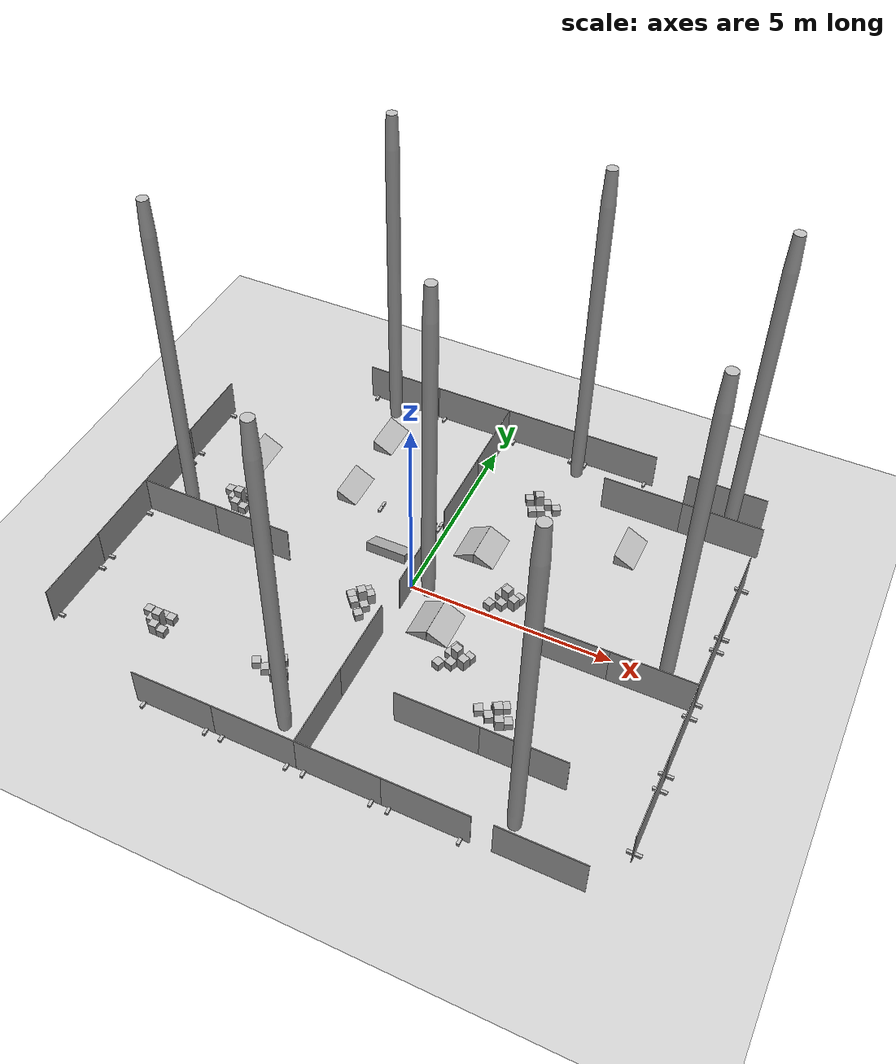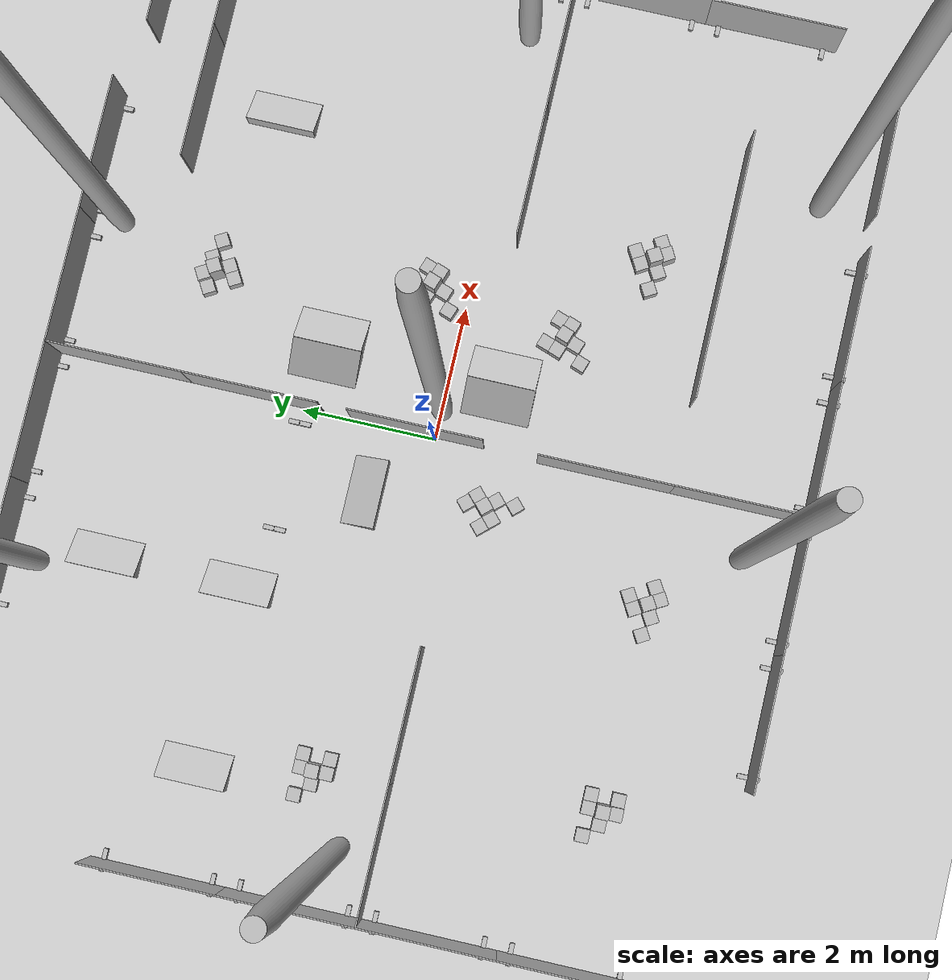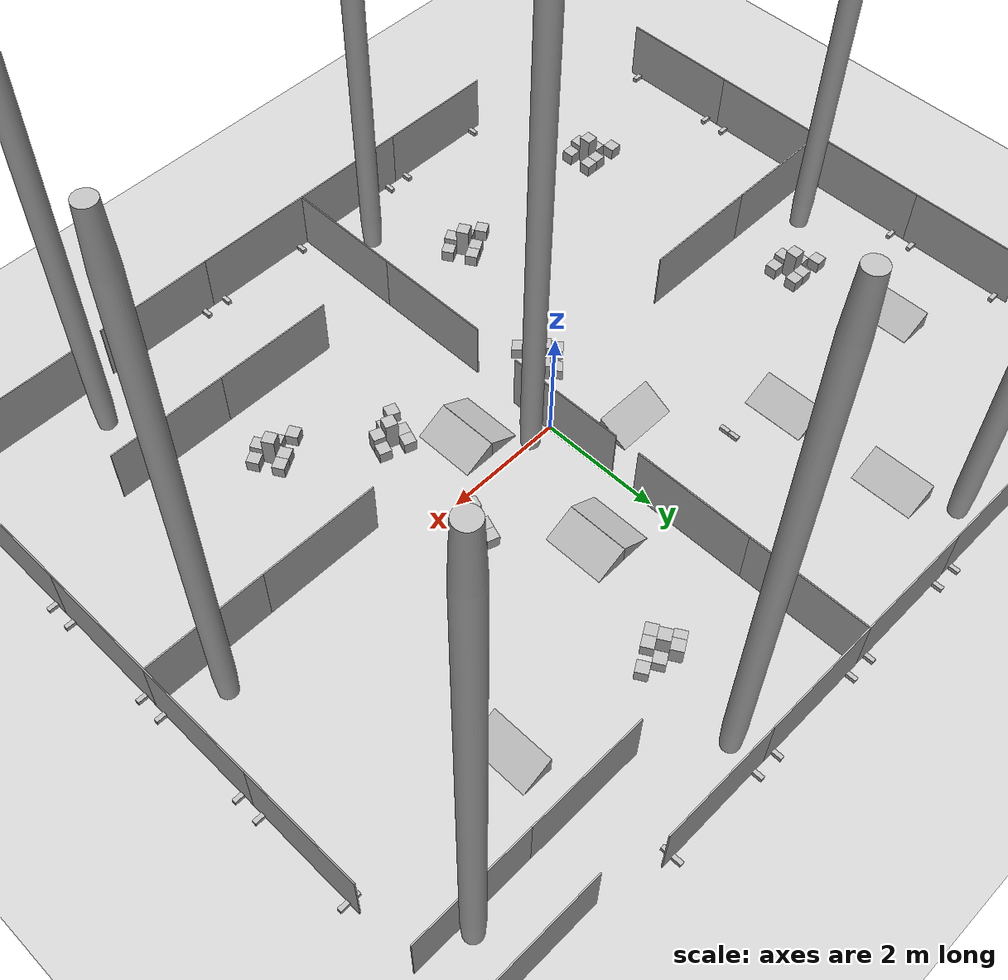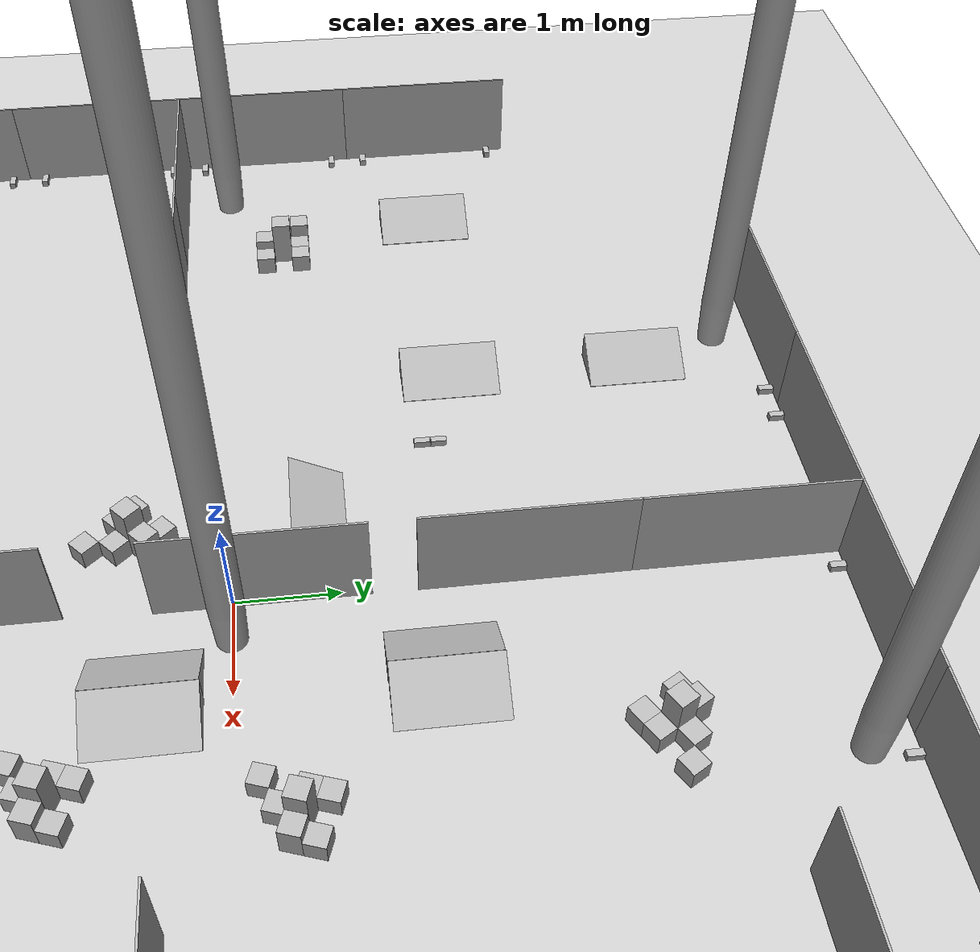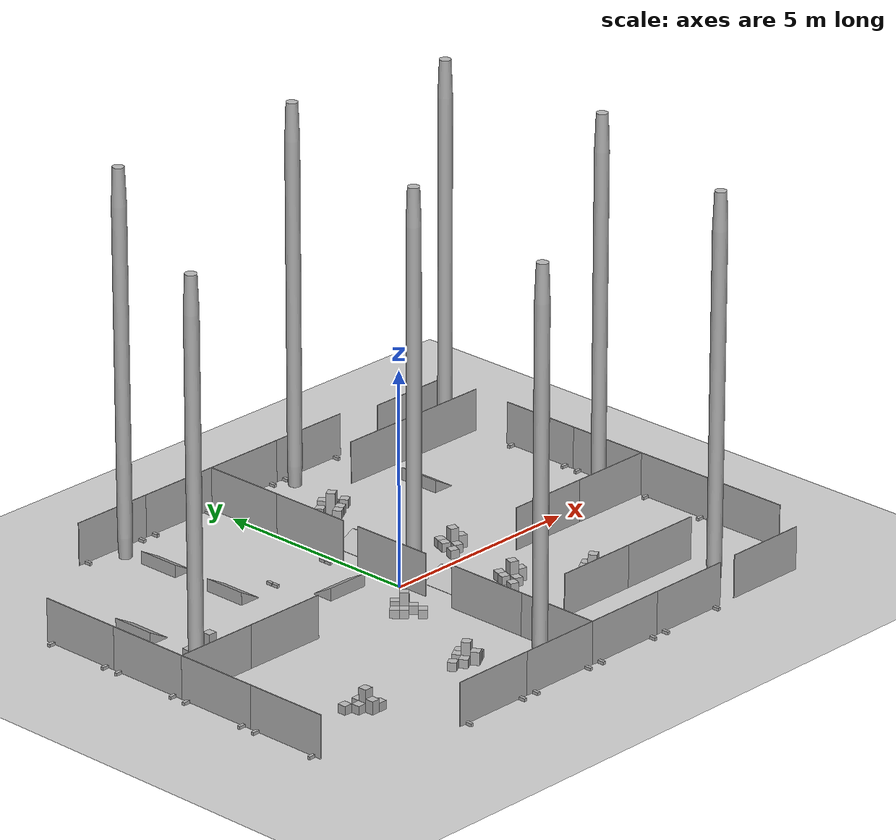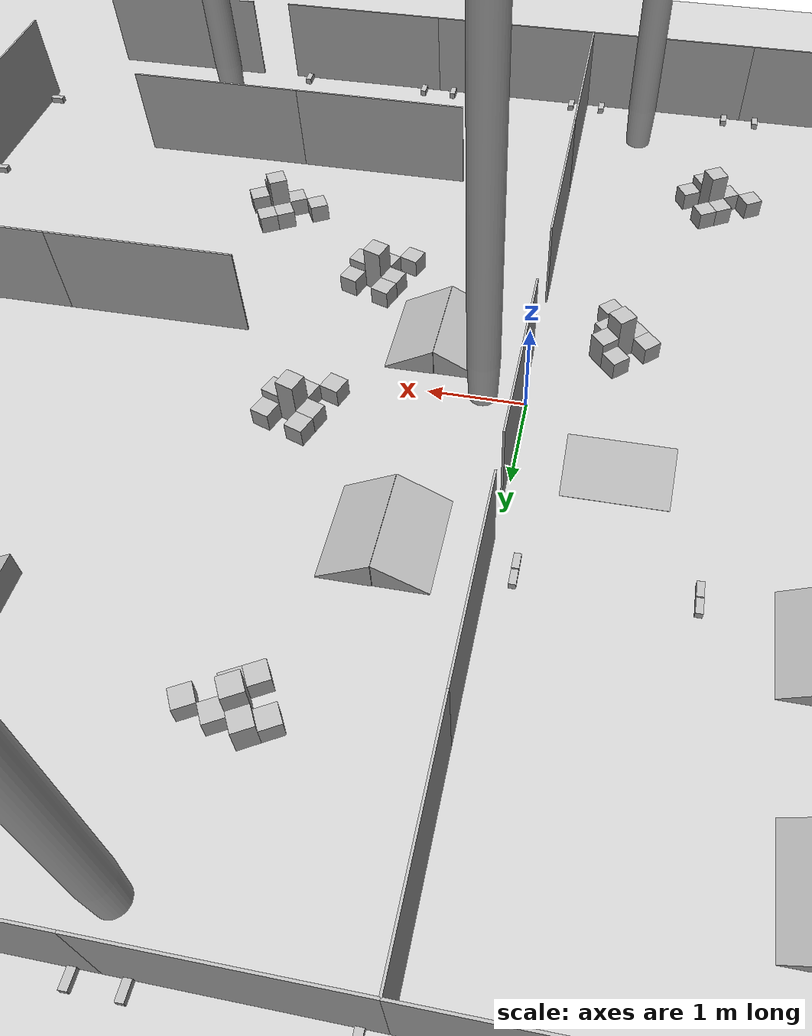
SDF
<sdf version="1.4">
 <world name="arena_HKT_2">
  <include><uri>model://ground_plane</uri></include>
  <include>
   <name>wall_2x1.083</name>
   <pose>-7.0 2.468942403793335 0.5130000114440918  0.0 -0.0 1.570796251296997</pose>
   <uri>model://wall_2x1</uri>
  </include>
  <include>
   <name>wall_2x1.084</name>
   <pose>-4.0 -0.531057596206665 0.5130000114440918  0.0 0.0 0.0</pose>
   <uri>model://wall_2x1</uri>
  </include>
  <include>
   <name>wall_stand.169</name>
   <pose>-1.8005000352859497 2.0 0.03449999913573265  0.0 -0.0 1.570796251296997</pose>
   <uri>model://wall_stand</uri>
  </include>
  <include>
   <name>wall_stand.170</name>
   <pose>-0.19949999451637268 2.0 0.03449999913573265  0.0 -0.0 1.570796251296997</pose>
   <uri>model://wall_stand</uri>
  </include>
  <include>
   <name>wall_2x1.085</name>
   <pose>-7.0 0.46894240379333496 0.5130000114440918  0.0 -0.0 1.570796251296997</pose>
   <uri>model://wall_2x1</uri>
  </include>
  <include>
   <name>wall_2x1.086</name>
   <pose>-7.0 -3.531057596206665 0.5130000114440918  0.0 -0.0 1.570796251296997</pose>
   <uri>model://wall_2x1</uri>
  </include>
  <include>
   <name>wall_2x1.087</name>
   <pose>-7.0 -1.531057596206665 0.5130000114440918  0.0 -0.0 1.570796251296997</pose>
   <uri>model://wall_2x1</uri>
  </include>
  <include>
   <name>wall_2x1.088</name>
   <pose>-6.0 -0.531057596206665 0.5130000114440918  0.0 0.0 0.0</pose>
   <uri>model://wall_2x1</uri>
  </include>
  <include>
   <name>wall_stand.177</name>
   <pose>-0.19949999451637268 2.0 0.03449999913573265  0.0 -0.0 1.570796251296997</pose>
   <uri>model://wall_stand</uri>
  </include>
  <include>
   <name>wall_stand.167</name>
   <pose>-7.0 3.269442558288574 0.03449999913573265  0.0 0.0 0.0</pose>
   <uri>model://wall_stand</uri>
  </include>
  <include>
   <name>wall_stand.168</name>
   <pose>-7.0 1.6684424877166748 0.03449999913573265  0.0 0.0 0.0</pose>
   <uri>model://wall_stand</uri>
  </include>
  <include>
   <name>wall_stand.171</name>
   <pose>-7.0 1.2694425582885742 0.03449999913573265  0.0 0.0 0.0</pose>
   <uri>model://wall_stand</uri>
  </include>
  <include>
   <name>wall_stand.172</name>
   <pose>-7.0 -0.3315575122833252 0.03449999913573265  0.0 0.0 0.0</pose>
   <uri>model://wall_stand</uri>
  </include>
  <include>
   <name>wall_stand.173</name>
   <pose>-7.0 -4.331557273864746 0.03449999913573265  0.0 0.0 0.0</pose>
   <uri>model://wall_stand</uri>
  </include>
  <include>
   <name>wall_stand.174</name>
   <pose>-7.0 -2.730557680130005 0.03449999913573265  0.0 0.0 0.0</pose>
   <uri>model://wall_stand</uri>
  </include>
  <include>
   <name>wall_stand.175</name>
   <pose>-7.0 -0.7305574417114258 0.03449999913573265  0.0 0.0 0.0</pose>
   <uri>model://wall_stand</uri>
  </include>
  <include>
   <name>wall_stand.176</name>
   <pose>-7.0 -2.331557512283325 0.03449999913573265  0.0 0.0 0.0</pose>
   <uri>model://wall_stand</uri>
  </include>
  <include>
   <name>cube_20x20.010</name>
   <pose>-5.073810577392578 0.8086726665496826 0.10000000149011612  0.0 -0.0 3.141592502593994</pose>
   <uri>model://cube_20x20</uri>
  </include>
  <include>
   <name>cube_20x20.011</name>
   <pose>-5.273810386657715 0.6086728572845459 0.10000000149011612  0.0 -0.0 3.141592502593994</pose>
   <uri>model://cube_20x20</uri>
  </include>
  <include>
   <name>cube_20x20.012</name>
   <pose>-5.473810195922852 0.8086726665496826 0.10000000149011612  0.0 -0.0 3.141592502593994</pose>
   <uri>model://cube_20x20</uri>
  </include>
  <include>
   <name>cube_20x20.013</name>
   <pose>-4.873810291290283 0.8086726665496826 0.10000000149011612  0.0 -0.0 3.141592502593994</pose>
   <uri>model://cube_20x20</uri>
  </include>
  <include>
   <name>cube_20x20.014</name>
   <pose>-4.873810291290283 0.4086730480194092 0.10000000149011612  0.0 -0.0 3.141592502593994</pose>
   <uri>model://cube_20x20</uri>
  </include>
  <include>
   <name>cube_20x30.002</name>
   <pose>-5.073810577392578 0.4086730480194092 0.15000000596046448  0.0 -0.0 3.141592502593994</pose>
   <uri>model://cube_20x30</uri>
  </include>
  <include>
   <name>cube_20x50.002</name>
   <pose>-5.073810577392578 0.6086728572845459 0.25  0.0 -0.0 3.141592502593994</pose>
   <uri>model://cube_20x50</uri>
  </include>
  <include>
   <name>cube_20x20.015</name>
   <pose>-5.073810577392578 0.8086726665496826 0.10000000149011612  0.0 -0.0 3.141592502593994</pose>
   <uri>model://cube_20x20</uri>
  </include>
  <include>
   <name>cube_20x20.016</name>
   <pose>-5.273810386657715 0.6086728572845459 0.10000000149011612  0.0 -0.0 3.141592502593994</pose>
   <uri>model://cube_20x20</uri>
  </include>
  <include>
   <name>cube_20x20.017</name>
   <pose>-5.473810195922852 0.8086726665496826 0.10000000149011612  0.0 -0.0 3.141592502593994</pose>
   <uri>model://cube_20x20</uri>
  </include>
  <include>
   <name>cube_20x20.018</name>
   <pose>-4.873810291290283 0.8086726665496826 0.10000000149011612  0.0 -0.0 3.141592502593994</pose>
   <uri>model://cube_20x20</uri>
  </include>
  <include>
   <name>cube_20x20.019</name>
   <pose>-4.873810291290283 0.4086730480194092 0.10000000149011612  0.0 -0.0 3.141592502593994</pose>
   <uri>model://cube_20x20</uri>
  </include>
  <include>
   <name>cube_20x30.003</name>
   <pose>-5.073810577392578 0.4086730480194092 0.15000000596046448  0.0 -0.0 3.141592502593994</pose>
   <uri>model://cube_20x30</uri>
  </include>
  <include>
   <name>cube_20x50.003</name>
   <pose>-5.073810577392578 0.6086728572845459 0.25  0.0 -0.0 3.141592502593994</pose>
   <uri>model://cube_20x50</uri>
  </include>
  <include>
   <name>ramp.008</name>
   <pose>1.2565653324127197 1.8507144451141357 0.15000000596046448  0.0 0.0 0.0</pose>
   <uri>model://ramp</uri>
  </include>
  <include>
   <name>ramp.009</name>
   <pose>0.7436184883117676 1.8457143306732178 0.15000000596046448  0.0 -0.0 3.141592502593994</pose>
   <uri>model://ramp</uri>
  </include>
  <include>
   <name>ramp.010</name>
   <pose>-0.9832800030708313 0.8252742290496826 0.15000000596046448  0.0 -0.0 7.853981971740723</pose>
   <uri>model://ramp</uri>
  </include>
  <include>
   <name>wall_2x1.097</name>
   <pose>7.071430206298828 -3.531057596206665 0.5130000114440918  0.0 -0.0 4.71238899230957</pose>
   <uri>model://wall_2x1</uri>
  </include>
  <include>
   <name>wall_2x1.098</name>
   <pose>4.071430206298828 -0.5310573577880859 0.5130000114440918  0.0 -0.0 3.141592502593994</pose>
   <uri>model://wall_2x1</uri>
  </include>
  <include>
   <name>wall_stand.191</name>
   <pose>-1.8005000352859497 2.0 0.03449999913573265  0.0 -0.0 1.570796251296997</pose>
   <uri>model://wall_stand</uri>
  </include>
  <include>
   <name>wall_stand.192</name>
   <pose>-0.19949999451637268 2.0 0.03449999913573265  0.0 -0.0 1.570796251296997</pose>
   <uri>model://wall_stand</uri>
  </include>
  <include>
   <name>wall_2x1.099</name>
   <pose>7.071430206298828 -1.531057596206665 0.5130000114440918  0.0 -0.0 4.71238899230957</pose>
   <uri>model://wall_2x1</uri>
  </include>
  <include>
   <name>wall_2x1.100</name>
   <pose>7.071430206298828 2.468942403793335 0.5130000114440918  0.0 -0.0 4.71238899230957</pose>
   <uri>model://wall_2x1</uri>
  </include>
  <include>
   <name>wall_2x1.101</name>
   <pose>7.071430206298828 0.46894240379333496 0.5130000114440918  0.0 -0.0 4.71238899230957</pose>
   <uri>model://wall_2x1</uri>
  </include>
  <include>
   <name>wall_2x1.102</name>
   <pose>6.071430206298828 -0.5310574769973755 0.5130000114440918  0.0 -0.0 3.141592502593994</pose>
   <uri>model://wall_2x1</uri>
  </include>
  <include>
   <name>wall_stand.199</name>
   <pose>-0.19949999451637268 2.0 0.03449999913573265  0.0 -0.0 1.570796251296997</pose>
   <uri>model://wall_stand</uri>
  </include>
  <include>
   <name>wall_stand.189</name>
   <pose>7.071430206298828 -4.331557273864746 0.03450000286102295  0.0 -0.0 3.141592502593994</pose>
   <uri>model://wall_stand</uri>
  </include>
  <include>
   <name>wall_stand.190</name>
   <pose>7.071430206298828 -2.730557680130005 0.03450000286102295  0.0 -0.0 3.141592502593994</pose>
   <uri>model://wall_stand</uri>
  </include>
  <include>
   <name>wall_stand.193</name>
   <pose>7.071430206298828 -2.3315577507019043 0.03450000286102295  0.0 -0.0 3.141592502593994</pose>
   <uri>model://wall_stand</uri>
  </include>
  <include>
   <name>wall_stand.194</name>
   <pose>7.071430206298828 -0.7305576801300049 0.03450000286102295  0.0 -0.0 3.141592502593994</pose>
   <uri>model://wall_stand</uri>
  </include>
  <include>
   <name>wall_stand.195</name>
   <pose>7.071430206298828 3.269442319869995 0.03450000286102295  0.0 -0.0 3.141592502593994</pose>
   <uri>model://wall_stand</uri>
  </include>
  <include>
   <name>wall_stand.196</name>
   <pose>7.071430206298828 1.6684424877166748 0.03450000286102295  0.0 -0.0 3.141592502593994</pose>
   <uri>model://wall_stand</uri>
  </include>
  <include>
   <name>wall_stand.197</name>
   <pose>7.071430206298828 -0.3315577507019043 0.03450000286102295  0.0 -0.0 3.141592502593994</pose>
   <uri>model://wall_stand</uri>
  </include>
  <include>
   <name>wall_stand.198</name>
   <pose>7.071430206298828 1.2694423198699951 0.03450000286102295  0.0 -0.0 3.141592502593994</pose>
   <uri>model://wall_stand</uri>
  </include>
  <include>
   <name>wall_2x1.103</name>
   <pose>-2.989354133605957 -5.530285835266113 0.5130000114440918  0.0 -0.0 3.141592502593994</pose>
   <uri>model://wall_2x1</uri>
  </include>
  <include>
   <name>wall_2x1.104</name>
   <pose>0.010646045207977295 -2.5302858352661133 0.5130000114440918  0.0 -0.0 1.570796251296997</pose>
   <uri>model://wall_2x1</uri>
  </include>
  <include>
   <name>wall_stand.202</name>
   <pose>-1.8005000352859497 2.0 0.03449999913573265  0.0 -0.0 1.570796251296997</pose>
   <uri>model://wall_stand</uri>
  </include>
  <include>
   <name>wall_stand.203</name>
   <pose>-0.19949999451637268 2.0 0.03449999913573265  0.0 -0.0 1.570796251296997</pose>
   <uri>model://wall_stand</uri>
  </include>
  <include>
   <name>wall_2x1.105</name>
   <pose>-0.9893541932106018 -5.530285835266113 0.5130000114440918  0.0 -0.0 3.141592502593994</pose>
   <uri>model://wall_2x1</uri>
  </include>
  <include>
   <name>wall_2x1.106</name>
   <pose>3.010645627975464 -5.530285835266113 0.5130000114440918  0.0 -0.0 3.141592502593994</pose>
   <uri>model://wall_2x1</uri>
  </include>
  <include>
   <name>wall_2x1.107</name>
   <pose>1.010645866394043 -5.530285835266113 0.5130000114440918  0.0 -0.0 3.141592502593994</pose>
   <uri>model://wall_2x1</uri>
  </include>
  <include>
   <name>wall_2x1.108</name>
   <pose>0.010645806789398193 -4.530285835266113 0.5130000114440918  0.0 -0.0 1.570796251296997</pose>
   <uri>model://wall_2x1</uri>
  </include>
  <include>
   <name>wall_stand.210</name>
   <pose>-0.19949999451637268 2.0 0.03449999913573265  0.0 -0.0 1.570796251296997</pose>
   <uri>model://wall_stand</uri>
  </include>
  <include>
   <name>wall_stand.200</name>
   <pose>-3.7898542881011963 -5.530285835266113 0.03450000286102295  0.0 -0.0 1.570796251296997</pose>
   <uri>model://wall_stand</uri>
  </include>
  <include>
   <name>wall_stand.201</name>
   <pose>-2.188854217529297 -5.530285835266113 0.03450000286102295  0.0 -0.0 1.570796251296997</pose>
   <uri>model://wall_stand</uri>
  </include>
  <include>
   <name>wall_stand.204</name>
   <pose>-1.7898542881011963 -5.530285835266113 0.03450000286102295  0.0 -0.0 1.570796251296997</pose>
   <uri>model://wall_stand</uri>
  </include>
  <include>
   <name>wall_stand.205</name>
   <pose>-0.18885427713394165 -5.530285835266113 0.03450000286102295  0.0 -0.0 1.570796251296997</pose>
   <uri>model://wall_stand</uri>
  </include>
  <include>
   <name>wall_stand.206</name>
   <pose>3.811145544052124 -5.530285835266113 0.03450000286102295  0.0 -0.0 1.570796251296997</pose>
   <uri>model://wall_stand</uri>
  </include>
  <include>
   <name>wall_stand.207</name>
   <pose>2.210145950317383 -5.530285835266113 0.03450000286102295  0.0 -0.0 1.570796251296997</pose>
   <uri>model://wall_stand</uri>
  </include>
  <include>
   <name>wall_stand.208</name>
   <pose>0.21014565229415894 -5.530285835266113 0.03450000286102295  0.0 -0.0 1.570796251296997</pose>
   <uri>model://wall_stand</uri>
  </include>
  <include>
   <name>wall_stand.209</name>
   <pose>1.8111457824707031 -5.530285835266113 0.03450000286102295  0.0 -0.0 1.570796251296997</pose>
   <uri>model://wall_stand</uri>
  </include>
  <include>
   <name>cube_20x20.020</name>
   <pose>-4.71690034866333 -3.3630831241607666 0.10000000149011612  0.0 -0.0 3.141592502593994</pose>
   <uri>model://cube_20x20</uri>
  </include>
  <include>
   <name>cube_20x20.021</name>
   <pose>-4.916900157928467 -3.5630829334259033 0.10000000149011612  0.0 -0.0 3.141592502593994</pose>
   <uri>model://cube_20x20</uri>
  </include>
  <include>
   <name>cube_20x20.022</name>
   <pose>-5.1168999671936035 -3.3630831241607666 0.10000000149011612  0.0 -0.0 3.141592502593994</pose>
   <uri>model://cube_20x20</uri>
  </include>
  <include>
   <name>cube_20x20.023</name>
   <pose>-4.516900062561035 -3.3630831241607666 0.10000000149011612  0.0 -0.0 3.141592502593994</pose>
   <uri>model://cube_20x20</uri>
  </include>
  <include>
   <name>cube_20x20.024</name>
   <pose>-4.516900062561035 -3.76308274269104 0.10000000149011612  0.0 -0.0 3.141592502593994</pose>
   <uri>model://cube_20x20</uri>
  </include>
  <include>
   <name>cube_20x20.025</name>
   <pose>-4.71690034866333 -3.3630831241607666 0.10000000149011612  0.0 -0.0 3.141592502593994</pose>
   <uri>model://cube_20x20</uri>
  </include>
  <include>
   <name>cube_20x20.026</name>
   <pose>-4.916900157928467 -3.5630829334259033 0.10000000149011612  0.0 -0.0 3.141592502593994</pose>
   <uri>model://cube_20x20</uri>
  </include>
  <include>
   <name>cube_20x20.027</name>
   <pose>-5.1168999671936035 -3.3630831241607666 0.10000000149011612  0.0 -0.0 3.141592502593994</pose>
   <uri>model://cube_20x20</uri>
  </include>
  <include>
   <name>cube_20x20.028</name>
   <pose>-4.516900062561035 -3.3630831241607666 0.10000000149011612  0.0 -0.0 3.141592502593994</pose>
   <uri>model://cube_20x20</uri>
  </include>
  <include>
   <name>cube_20x20.029</name>
   <pose>-4.516900062561035 -3.76308274269104 0.10000000149011612  0.0 -0.0 3.141592502593994</pose>
   <uri>model://cube_20x20</uri>
  </include>
  <include>
   <name>cube_20x30.004</name>
   <pose>-4.71690034866333 -3.76308274269104 0.15000000596046448  0.0 -0.0 3.141592502593994</pose>
   <uri>model://cube_20x30</uri>
  </include>
  <include>
   <name>cube_20x30.005</name>
   <pose>-4.71690034866333 -3.76308274269104 0.15000000596046448  0.0 -0.0 3.141592502593994</pose>
   <uri>model://cube_20x30</uri>
  </include>
  <include>
   <name>cube_20x50.004</name>
   <pose>-4.71690034866333 -3.5630829334259033 0.25  0.0 -0.0 3.141592502593994</pose>
   <uri>model://cube_20x50</uri>
  </include>
  <include>
   <name>cube_20x50.005</name>
   <pose>-4.71690034866333 -3.5630829334259033 0.25  0.0 -0.0 3.141592502593994</pose>
   <uri>model://cube_20x50</uri>
  </include>
  <include>
   <name>cube_20x20.030</name>
   <pose>-1.7805752754211426 -3.3717634677886963 0.10000000149011612  0.0 -0.0 3.6651763916015625</pose>
   <uri>model://cube_20x20</uri>
  </include>
  <include>
   <name>cube_20x20.031</name>
   <pose>-1.8537843227386475 -3.6449673175811768 0.10000000149011612  0.0 -0.0 3.6651763916015625</pose>
   <uri>model://cube_20x20</uri>
  </include>
  <include>
   <name>cube_20x20.032</name>
   <pose>-2.126988172531128 -3.5717580318450928 0.10000000149011612  0.0 -0.0 3.6651763916015625</pose>
   <uri>model://cube_20x20</uri>
  </include>
  <include>
   <name>cube_20x20.033</name>
   <pose>-1.6073683500289917 -3.271765947341919 0.10000000149011612  0.0 -0.0 3.6651763916015625</pose>
   <uri>model://cube_20x20</uri>
  </include>
  <include>
   <name>cube_20x20.034</name>
   <pose>-1.4073739051818848 -3.6181790828704834 0.10000000149011612  0.0 -0.0 3.6651763916015625</pose>
   <uri>model://cube_20x20</uri>
  </include>
  <include>
   <name>cube_20x20.035</name>
   <pose>-1.7805752754211426 -3.3717634677886963 0.10000000149011612  0.0 -0.0 3.6651763916015625</pose>
   <uri>model://cube_20x20</uri>
  </include>
  <include>
   <name>cube_20x20.036</name>
   <pose>-1.8537843227386475 -3.6449673175811768 0.10000000149011612  0.0 -0.0 3.6651763916015625</pose>
   <uri>model://cube_20x20</uri>
  </include>
  <include>
   <name>cube_20x20.037</name>
   <pose>-2.126988172531128 -3.5717580318450928 0.10000000149011612  0.0 -0.0 3.6651763916015625</pose>
   <uri>model://cube_20x20</uri>
  </include>
  <include>
   <name>cube_20x20.038</name>
   <pose>-1.6073683500289917 -3.271765947341919 0.10000000149011612  0.0 -0.0 3.6651763916015625</pose>
   <uri>model://cube_20x20</uri>
  </include>
  <include>
   <name>cube_20x20.039</name>
   <pose>-1.4073739051818848 -3.6181790828704834 0.10000000149011612  0.0 -0.0 3.6651763916015625</pose>
   <uri>model://cube_20x20</uri>
  </include>
  <include>
   <name>cube_20x30.006</name>
   <pose>-1.580580711364746 -3.7181766033172607 0.15000000596046448  0.0 -0.0 3.6651763916015625</pose>
   <uri>model://cube_20x30</uri>
  </include>
  <include>
   <name>cube_20x30.007</name>
   <pose>-1.580580711364746 -3.7181766033172607 0.15000000596046448  0.0 -0.0 3.6651763916015625</pose>
   <uri>model://cube_20x30</uri>
  </include>
  <include>
   <name>cube_20x50.006</name>
   <pose>-1.6805779933929443 -3.5449702739715576 0.25  0.0 -0.0 3.6651763916015625</pose>
   <uri>model://cube_20x50</uri>
  </include>
  <include>
   <name>cube_20x50.007</name>
   <pose>-1.6805779933929443 -3.5449702739715576 0.25  0.0 -0.0 3.6651763916015625</pose>
   <uri>model://cube_20x50</uri>
  </include>
  <include>
   <name>cube_20x20.050</name>
   <pose>2.0343916416168213 0.613365888595581 0.10000000149011612  0.0 0.0 4.376082897186279</pose>
   <uri>model://cube_20x20</uri>
  </include>
  <include>
   <name>cube_20x20.051</name>
   <pose>2.1571874618530273 0.358569860458374 0.10000000149011612  0.0 0.0 4.376082897186279</pose>
   <uri>model://cube_20x20</uri>
  </include>
  <include>
   <name>cube_20x20.052</name>
   <pose>1.902390956878662 0.23577475547790527 0.10000000149011612  0.0 0.0 4.376082897186279</pose>
   <uri>model://cube_20x20</uri>
  </include>
  <include>
   <name>cube_20x20.053</name>
   <pose>2.1003925800323486 0.8021619319915771 0.10000000149011612  0.0 0.0 4.376082897186279</pose>
   <uri>model://cube_20x20</uri>
  </include>
  <include>
   <name>cube_20x20.054</name>
   <pose>2.4779841899871826 0.6701610088348389 0.10000000149011612  0.0 0.0 4.376082897186279</pose>
   <uri>model://cube_20x20</uri>
  </include>
  <include>
   <name>cube_20x20.055</name>
   <pose>2.0343916416168213 0.613365888595581 0.10000000149011612  0.0 0.0 4.376082897186279</pose>
   <uri>model://cube_20x20</uri>
  </include>
  <include>
   <name>cube_20x20.056</name>
   <pose>2.1571874618530273 0.358569860458374 0.10000000149011612  0.0 0.0 4.376082897186279</pose>
   <uri>model://cube_20x20</uri>
  </include>
  <include>
   <name>cube_20x20.057</name>
   <pose>1.902390956878662 0.23577475547790527 0.10000000149011612  0.0 0.0 4.376082897186279</pose>
   <uri>model://cube_20x20</uri>
  </include>
  <include>
   <name>cube_20x20.058</name>
   <pose>2.1003925800323486 0.8021619319915771 0.10000000149011612  0.0 0.0 4.376082897186279</pose>
   <uri>model://cube_20x20</uri>
  </include>
  <include>
   <name>cube_20x20.059</name>
   <pose>2.4779841899871826 0.6701610088348389 0.10000000149011612  0.0 0.0 4.376082897186279</pose>
   <uri>model://cube_20x20</uri>
  </include>
  <include>
   <name>cube_20x30.010</name>
   <pose>2.4119834899902344 0.4813649654388428 0.15000000596046448  0.0 0.0 4.376082897186279</pose>
   <uri>model://cube_20x30</uri>
  </include>
  <include>
   <name>cube_20x30.011</name>
   <pose>2.4119834899902344 0.4813649654388428 0.15000000596046448  0.0 0.0 4.376082897186279</pose>
   <uri>model://cube_20x30</uri>
  </include>
  <include>
   <name>cube_20x50.010</name>
   <pose>2.2231879234313965 0.5473649501800537 0.25  0.0 0.0 4.376082897186279</pose>
   <uri>model://cube_20x50</uri>
  </include>
  <include>
   <name>cube_20x50.011</name>
   <pose>2.2231879234313965 0.5473649501800537 0.25  0.0 0.0 4.376082897186279</pose>
   <uri>model://cube_20x50</uri>
  </include>
  <include>
   <name>ramp.011</name>
   <pose>1.2565653324127197 -0.7687876224517822 0.15000000596046448  0.0 0.0 0.0</pose>
   <uri>model://ramp</uri>
  </include>
  <include>
   <name>ramp.012</name>
   <pose>0.7436184883117676 -0.7737877368927002 0.15000000596046448  0.0 -0.0 3.141592502593994</pose>
   <uri>model://ramp</uri>
  </include>
  <include>
   <name>cube_20x20.060</name>
   <pose>-0.978894829750061 -1.071094274520874 0.10000000149011612  0.0 0.0 5.4528021812438965</pose>
   <uri>model://cube_20x20</uri>
  </include>
  <include>
   <name>cube_20x20.061</name>
   <pose>-0.6963385343551636 -1.0838134288787842 0.10000000149011612  0.0 0.0 5.4528021812438965</pose>
   <uri>model://cube_20x20</uri>
  </include>
  <include>
   <name>cube_20x20.062</name>
   <pose>-0.709058403968811 -1.3663697242736816 0.10000000149011612  0.0 0.0 5.4528021812438965</pose>
   <uri>model://cube_20x20</uri>
  </include>
  <include>
   <name>cube_20x20.063</name>
   <pose>-1.1138131618499756 -0.9234559535980225 0.10000000149011612  0.0 0.0 5.4528021812438965</pose>
   <uri>model://cube_20x20</uri>
  </include>
  <include>
   <name>cube_20x20.064</name>
   <pose>-0.8185372948646545 -0.6536192893981934 0.10000000149011612  0.0 0.0 5.4528021812438965</pose>
   <uri>model://cube_20x20</uri>
  </include>
  <include>
   <name>cube_20x20.065</name>
   <pose>-0.978894829750061 -1.071094274520874 0.10000000149011612  0.0 0.0 5.4528021812438965</pose>
   <uri>model://cube_20x20</uri>
  </include>
  <include>
   <name>cube_20x20.066</name>
   <pose>-0.6963385343551636 -1.0838134288787842 0.10000000149011612  0.0 0.0 5.4528021812438965</pose>
   <uri>model://cube_20x20</uri>
  </include>
  <include>
   <name>cube_20x20.067</name>
   <pose>-0.709058403968811 -1.3663697242736816 0.10000000149011612  0.0 0.0 5.4528021812438965</pose>
   <uri>model://cube_20x20</uri>
  </include>
  <include>
   <name>cube_20x20.068</name>
   <pose>-1.1138131618499756 -0.9234559535980225 0.10000000149011612  0.0 0.0 5.4528021812438965</pose>
   <uri>model://cube_20x20</uri>
  </include>
  <include>
   <name>cube_20x20.069</name>
   <pose>-0.8185372948646545 -0.6536192893981934 0.10000000149011612  0.0 0.0 5.4528021812438965</pose>
   <uri>model://cube_20x20</uri>
  </include>
  <include>
   <name>cube_20x30.012</name>
   <pose>-0.6836188435554504 -0.8012573719024658 0.15000000596046448  0.0 0.0 5.4528021812438965</pose>
   <uri>model://cube_20x30</uri>
  </include>
  <include>
   <name>cube_20x30.013</name>
   <pose>-0.6836188435554504 -0.8012573719024658 0.15000000596046448  0.0 0.0 5.4528021812438965</pose>
   <uri>model://cube_20x30</uri>
  </include>
  <include>
   <name>cube_20x50.012</name>
   <pose>-0.8312562108039856 -0.9361758232116699 0.25  0.0 0.0 5.4528021812438965</pose>
   <uri>model://cube_20x50</uri>
  </include>
  <include>
   <name>cube_20x50.013</name>
   <pose>-0.8312562108039856 -0.9361758232116699 0.25  0.0 0.0 5.4528021812438965</pose>
   <uri>model://cube_20x50</uri>
  </include>
  <include>
   <name>cube_20x20.070</name>
   <pose>1.8325855731964111 3.536480188369751 0.10000000149011612  0.0 0.0 6.806769371032715</pose>
   <uri>model://cube_20x20</uri>
  </include>
  <include>
   <name>cube_20x20.071</name>
   <pose>1.905794620513916 3.8096840381622314 0.10000000149011612  0.0 0.0 6.806769371032715</pose>
   <uri>model://cube_20x20</uri>
  </include>
  <include>
   <name>cube_20x20.072</name>
   <pose>2.1789984703063965 3.7364747524261475 0.10000000149011612  0.0 0.0 6.806769371032715</pose>
   <uri>model://cube_20x20</uri>
  </include>
  <include>
   <name>cube_20x20.073</name>
   <pose>1.6593786478042603 3.4364826679229736 0.10000000149011612  0.0 0.0 6.806769371032715</pose>
   <uri>model://cube_20x20</uri>
  </include>
  <include>
   <name>cube_20x20.074</name>
   <pose>1.4593842029571533 3.782895803451538 0.10000000149011612  0.0 0.0 6.806769371032715</pose>
   <uri>model://cube_20x20</uri>
  </include>
  <include>
   <name>cube_20x20.075</name>
   <pose>1.8325855731964111 3.536480188369751 0.10000000149011612  0.0 0.0 6.806769371032715</pose>
   <uri>model://cube_20x20</uri>
  </include>
  <include>
   <name>cube_20x20.076</name>
   <pose>1.905794620513916 3.8096840381622314 0.10000000149011612  0.0 0.0 6.806769371032715</pose>
   <uri>model://cube_20x20</uri>
  </include>
  <include>
   <name>cube_20x20.077</name>
   <pose>2.1789984703063965 3.7364747524261475 0.10000000149011612  0.0 0.0 6.806769371032715</pose>
   <uri>model://cube_20x20</uri>
  </include>
  <include>
   <name>cube_20x20.078</name>
   <pose>1.6593786478042603 3.4364826679229736 0.10000000149011612  0.0 0.0 6.806769371032715</pose>
   <uri>model://cube_20x20</uri>
  </include>
  <include>
   <name>cube_20x20.079</name>
   <pose>1.4593842029571533 3.782895803451538 0.10000000149011612  0.0 0.0 6.806769371032715</pose>
   <uri>model://cube_20x20</uri>
  </include>
  <include>
   <name>cube_20x30.014</name>
   <pose>1.6325910091400146 3.8828933238983154 0.15000000596046448  0.0 0.0 6.806769371032715</pose>
   <uri>model://cube_20x30</uri>
  </include>
  <include>
   <name>cube_20x30.015</name>
   <pose>1.6325910091400146 3.8828933238983154 0.15000000596046448  0.0 0.0 6.806769371032715</pose>
   <uri>model://cube_20x30</uri>
  </include>
  <include>
   <name>cube_20x50.014</name>
   <pose>1.732588291168213 3.7096869945526123 0.25  0.0 0.0 6.806769371032715</pose>
   <uri>model://cube_20x50</uri>
  </include>
  <include>
   <name>cube_20x50.015</name>
   <pose>1.732588291168213 3.7096869945526123 0.25  0.0 0.0 6.806769371032715</pose>
   <uri>model://cube_20x50</uri>
  </include>
  <include>
   <name>wall_2x1.109</name>
   <pose>3.0413644313812256 5.695001602172852 0.5130000114440918  0.0 -0.0 6.283185005187988</pose>
   <uri>model://wall_2x1</uri>
  </include>
  <include>
   <name>wall_2x1.110</name>
   <pose>0.04136395454406738 2.695002794265747 0.5130000114440918  0.0 -0.0 4.71238899230957</pose>
   <uri>model://wall_2x1</uri>
  </include>
  <include>
   <name>wall_stand.213</name>
   <pose>-1.8005000352859497 2.0 0.03449999913573265  0.0 -0.0 1.570796251296997</pose>
   <uri>model://wall_stand</uri>
  </include>
  <include>
   <name>wall_stand.214</name>
   <pose>-0.19949999451637268 2.0 0.03449999913573265  0.0 -0.0 1.570796251296997</pose>
   <uri>model://wall_stand</uri>
  </include>
  <include>
   <name>wall_2x1.111</name>
   <pose>1.0413646697998047 5.695002555847168 0.5130000114440918  0.0 -0.0 6.283185005187988</pose>
   <uri>model://wall_2x1</uri>
  </include>
  <include>
   <name>wall_2x1.112</name>
   <pose>-2.9586355686187744 5.695002555847168 0.5130000114440918  0.0 -0.0 6.283185005187988</pose>
   <uri>model://wall_2x1</uri>
  </include>
  <include>
   <name>wall_2x1.113</name>
   <pose>-0.9586355686187744 5.695002555847168 0.5130000114440918  0.0 -0.0 6.283185005187988</pose>
   <uri>model://wall_2x1</uri>
  </include>
  <include>
   <name>wall_2x1.114</name>
   <pose>0.041364431381225586 4.695002555847168 0.5130000114440918  0.0 -0.0 4.71238899230957</pose>
   <uri>model://wall_2x1</uri>
  </include>
  <include>
   <name>wall_stand.221</name>
   <pose>-0.19949999451637268 2.0 0.03449999913573265  0.0 -0.0 1.570796251296997</pose>
   <uri>model://wall_stand</uri>
  </include>
  <include>
   <name>wall_stand.211</name>
   <pose>3.841865062713623 5.695001602172852 0.03450000286102295  0.0 -0.0 4.71238899230957</pose>
   <uri>model://wall_stand</uri>
  </include>
  <include>
   <name>wall_stand.212</name>
   <pose>2.2408647537231445 5.695002555847168 0.03450000286102295  0.0 -0.0 4.71238899230957</pose>
   <uri>model://wall_stand</uri>
  </include>
  <include>
   <name>wall_stand.215</name>
   <pose>1.8418647050857544 5.695002555847168 0.03450000286102295  0.0 -0.0 4.71238899230957</pose>
   <uri>model://wall_stand</uri>
  </include>
  <include>
   <name>wall_stand.216</name>
   <pose>0.24086451530456543 5.695002555847168 0.03450000286102295  0.0 -0.0 4.71238899230957</pose>
   <uri>model://wall_stand</uri>
  </include>
  <include>
   <name>wall_stand.217</name>
   <pose>-3.7591354846954346 5.695002555847168 0.03450000286102295  0.0 -0.0 4.71238899230957</pose>
   <uri>model://wall_stand</uri>
  </include>
  <include>
   <name>wall_stand.218</name>
   <pose>-2.1581356525421143 5.695002555847168 0.03450000286102295  0.0 -0.0 4.71238899230957</pose>
   <uri>model://wall_stand</uri>
  </include>
  <include>
   <name>wall_stand.219</name>
   <pose>-0.15813517570495605 5.695002555847168 0.03450000286102295  0.0 -0.0 4.71238899230957</pose>
   <uri>model://wall_stand</uri>
  </include>
  <include>
   <name>wall_stand.220</name>
   <pose>-1.7591354846954346 5.695002555847168 0.03450000286102295  0.0 -0.0 4.71238899230957</pose>
   <uri>model://wall_stand</uri>
  </include>
  <include>
   <name>wall_2x1.115</name>
   <pose>0.04136395454406738 0.2739219665527344 0.5130000114440918  0.0 -0.0 4.71238899230957</pose>
   <uri>model://wall_2x1</uri>
  </include>
  <include>
   <name>wall_stand.222</name>
   <pose>-1.8005000352859497 2.0 0.03449999913573265  0.0 -0.0 1.570796251296997</pose>
   <uri>model://wall_stand</uri>
  </include>
  <include>
   <name>wall_stand.223</name>
   <pose>-0.19949999451637268 2.0 0.03449999913573265  0.0 -0.0 1.570796251296997</pose>
   <uri>model://wall_stand</uri>
  </include>
  <include>
   <name>wall_2x1.116</name>
   <pose>5.476836204528809 -5.509757041931152 0.5130000114440918  0.0 -0.0 6.2831854820251465</pose>
   <uri>model://wall_2x1</uri>
  </include>
  <include>
   <name>wall_stand.224</name>
   <pose>-1.8005000352859497 2.0 0.03449999913573265  0.0 -0.0 1.570796251296997</pose>
   <uri>model://wall_stand</uri>
  </include>
  <include>
   <name>wall_stand.225</name>
   <pose>-0.19949999451637268 2.0 0.03449999913573265  0.0 -0.0 1.570796251296997</pose>
   <uri>model://wall_stand</uri>
  </include>
  <include>
   <name>wall_2x1.117</name>
   <pose>4.3128767013549805 -3.5467369556427 0.5130000114440918  0.0 -0.0 6.2831854820251465</pose>
   <uri>model://wall_2x1</uri>
  </include>
  <include>
   <name>wall_stand.226</name>
   <pose>-1.8005000352859497 2.0 0.03449999913573265  0.0 -0.0 1.570796251296997</pose>
   <uri>model://wall_stand</uri>
  </include>
  <include>
   <name>wall_stand.227</name>
   <pose>-0.19949999451637268 2.0 0.03449999913573265  0.0 -0.0 1.570796251296997</pose>
   <uri>model://wall_stand</uri>
  </include>
  <include>
   <name>wall_2x1.118</name>
   <pose>2.3128767013549805 -3.5467369556427 0.5130000114440918  0.0 -0.0 6.2831854820251465</pose>
   <uri>model://wall_2x1</uri>
  </include>
  <include>
   <name>wall_stand.228</name>
   <pose>-1.8005000352859497 2.0 0.03449999913573265  0.0 -0.0 1.570796251296997</pose>
   <uri>model://wall_stand</uri>
  </include>
  <include>
   <name>wall_stand.229</name>
   <pose>-0.19949999451637268 2.0 0.03449999913573265  0.0 -0.0 1.570796251296997</pose>
   <uri>model://wall_stand</uri>
  </include>
  <include>
   <name>ramp.013</name>
   <pose>-5.403332710266113 2.3036534786224365 0.15000000596046448  0.0 -0.0 6.283185005187988</pose>
   <uri>model://ramp</uri>
  </include>
  <include>
   <name>wall_2x1.119</name>
   <pose>5.946268081665039 5.418047904968262 0.5130000114440918  0.0 -0.0 9.42477798461914</pose>
   <uri>model://wall_2x1</uri>
  </include>
  <include>
   <name>wall_stand.230</name>
   <pose>-1.8005000352859497 2.0 0.03449999913573265  0.0 -0.0 1.570796251296997</pose>
   <uri>model://wall_stand</uri>
  </include>
  <include>
   <name>wall_stand.231</name>
   <pose>-0.19949999451637268 2.0 0.03449999913573265  0.0 -0.0 1.570796251296997</pose>
   <uri>model://wall_stand</uri>
  </include>
  <include>
   <name>wall_2x1.120</name>
   <pose>4.110227108001709 4.4550275802612305 0.5130000114440918  0.0 -0.0 9.42477798461914</pose>
   <uri>model://wall_2x1</uri>
  </include>
  <include>
   <name>wall_stand.232</name>
   <pose>-1.8005000352859497 2.0 0.03449999913573265  0.0 -0.0 1.570796251296997</pose>
   <uri>model://wall_stand</uri>
  </include>
  <include>
   <name>wall_stand.233</name>
   <pose>-0.19949999451637268 2.0 0.03449999913573265  0.0 -0.0 1.570796251296997</pose>
   <uri>model://wall_stand</uri>
  </include>
  <include>
   <name>wall_2x1.121</name>
   <pose>6.110227108001709 4.4550275802612305 0.5130000114440918  0.0 -0.0 9.42477798461914</pose>
   <uri>model://wall_2x1</uri>
  </include>
  <include>
   <name>wall_stand.234</name>
   <pose>-1.8005000352859497 2.0 0.03449999913573265  0.0 -0.0 1.570796251296997</pose>
   <uri>model://wall_stand</uri>
  </include>
  <include>
   <name>wall_stand.235</name>
   <pose>-0.19949999451637268 2.0 0.03449999913573265  0.0 -0.0 1.570796251296997</pose>
   <uri>model://wall_stand</uri>
  </include>
  <include>
   <name>ramp.014</name>
   <pose>-2.6988332271575928 2.3036534786224365 0.15000000596046448  0.0 -0.0 6.283185005187988</pose>
   <uri>model://ramp</uri>
  </include>
  <include>
   <name>ramp.015</name>
   <pose>-2.6988332271575928 4.303653717041016 0.15000000596046448  0.0 -0.0 6.283185005187988</pose>
   <uri>model://ramp</uri>
  </include>
  <include>
   <name>cube_20x20.090</name>
   <pose>3.2194247245788574 -2.3717634677886963 0.10000000149011612  0.0 -0.0 3.6651763916015625</pose>
   <uri>model://cube_20x20</uri>
  </include>
  <include>
   <name>cube_20x20.091</name>
   <pose>3.1462156772613525 -2.6449673175811768 0.10000000149011612  0.0 -0.0 3.6651763916015625</pose>
   <uri>model://cube_20x20</uri>
  </include>
  <include>
   <name>cube_20x20.092</name>
   <pose>2.873011827468872 -2.5717580318450928 0.10000000149011612  0.0 -0.0 3.6651763916015625</pose>
   <uri>model://cube_20x20</uri>
  </include>
  <include>
   <name>cube_20x20.093</name>
   <pose>3.3926315307617188 -2.271765947341919 0.10000000149011612  0.0 -0.0 3.6651763916015625</pose>
   <uri>model://cube_20x20</uri>
  </include>
  <include>
   <name>cube_20x20.094</name>
   <pose>3.5926260948181152 -2.6181790828704834 0.10000000149011612  0.0 -0.0 3.6651763916015625</pose>
   <uri>model://cube_20x20</uri>
  </include>
  <include>
   <name>cube_20x20.095</name>
   <pose>3.2194247245788574 -2.3717634677886963 0.10000000149011612  0.0 -0.0 3.6651763916015625</pose>
   <uri>model://cube_20x20</uri>
  </include>
  <include>
   <name>cube_20x20.096</name>
   <pose>3.1462156772613525 -2.6449673175811768 0.10000000149011612  0.0 -0.0 3.6651763916015625</pose>
   <uri>model://cube_20x20</uri>
  </include>
  <include>
   <name>cube_20x20.097</name>
   <pose>2.873011827468872 -2.5717580318450928 0.10000000149011612  0.0 -0.0 3.6651763916015625</pose>
   <uri>model://cube_20x20</uri>
  </include>
  <include>
   <name>cube_20x20.098</name>
   <pose>3.3926315307617188 -2.271765947341919 0.10000000149011612  0.0 -0.0 3.6651763916015625</pose>
   <uri>model://cube_20x20</uri>
  </include>
  <include>
   <name>cube_20x20.099</name>
   <pose>3.5926260948181152 -2.6181790828704834 0.10000000149011612  0.0 -0.0 3.6651763916015625</pose>
   <uri>model://cube_20x20</uri>
  </include>
  <include>
   <name>cube_20x20.100</name>
   <pose>1.691523790359497 -1.4547417163848877 0.10000000149011612  0.0 0.0 4.376082897186279</pose>
   <uri>model://cube_20x20</uri>
  </include>
  <include>
   <name>cube_20x20.101</name>
   <pose>1.8143196105957031 -1.7095377445220947 0.10000000149011612  0.0 0.0 4.376082897186279</pose>
   <uri>model://cube_20x20</uri>
  </include>
  <include>
   <name>cube_20x20.102</name>
   <pose>1.559523105621338 -1.8323333263397217 0.10000000149011612  0.0 0.0 4.376082897186279</pose>
   <uri>model://cube_20x20</uri>
  </include>
  <include>
   <name>cube_20x20.103</name>
   <pose>1.7575247287750244 -1.2659454345703125 0.10000000149011612  0.0 0.0 4.376082897186279</pose>
   <uri>model://cube_20x20</uri>
  </include>
  <include>
   <name>cube_20x20.104</name>
   <pose>2.1351163387298584 -1.3979465961456299 0.10000000149011612  0.0 0.0 4.376082897186279</pose>
   <uri>model://cube_20x20</uri>
  </include>
  <include>
   <name>cube_20x20.105</name>
   <pose>1.691523790359497 -1.4547417163848877 0.10000000149011612  0.0 0.0 4.376082897186279</pose>
   <uri>model://cube_20x20</uri>
  </include>
  <include>
   <name>cube_20x20.106</name>
   <pose>1.8143196105957031 -1.7095377445220947 0.10000000149011612  0.0 0.0 4.376082897186279</pose>
   <uri>model://cube_20x20</uri>
  </include>
  <include>
   <name>cube_20x20.107</name>
   <pose>1.559523105621338 -1.8323333263397217 0.10000000149011612  0.0 0.0 4.376082897186279</pose>
   <uri>model://cube_20x20</uri>
  </include>
  <include>
   <name>cube_20x20.108</name>
   <pose>1.7575247287750244 -1.2659454345703125 0.10000000149011612  0.0 0.0 4.376082897186279</pose>
   <uri>model://cube_20x20</uri>
  </include>
  <include>
   <name>cube_20x20.109</name>
   <pose>2.1351163387298584 -1.3979465961456299 0.10000000149011612  0.0 0.0 4.376082897186279</pose>
   <uri>model://cube_20x20</uri>
  </include>
  <include>
   <name>cube_20x30.018</name>
   <pose>3.419419288635254 -2.7181766033172607 0.15000000596046448  0.0 -0.0 3.6651763916015625</pose>
   <uri>model://cube_20x30</uri>
  </include>
  <include>
   <name>cube_20x30.019</name>
   <pose>3.419419288635254 -2.7181766033172607 0.15000000596046448  0.0 -0.0 3.6651763916015625</pose>
   <uri>model://cube_20x30</uri>
  </include>
  <include>
   <name>cube_20x30.020</name>
   <pose>2.06911563873291 -1.5867431163787842 0.15000000596046448  0.0 0.0 4.376082897186279</pose>
   <uri>model://cube_20x30</uri>
  </include>
  <include>
   <name>cube_20x30.021</name>
   <pose>2.06911563873291 -1.5867431163787842 0.15000000596046448  0.0 0.0 4.376082897186279</pose>
   <uri>model://cube_20x30</uri>
  </include>
  <include>
   <name>cube_20x50.018</name>
   <pose>3.3194220066070557 -2.5449702739715576 0.25  0.0 -0.0 3.6651763916015625</pose>
   <uri>model://cube_20x50</uri>
  </include>
  <include>
   <name>cube_20x50.019</name>
   <pose>3.3194220066070557 -2.5449702739715576 0.25  0.0 -0.0 3.6651763916015625</pose>
   <uri>model://cube_20x50</uri>
  </include>
  <include>
   <name>cube_20x50.020</name>
   <pose>1.8803200721740723 -1.520742416381836 0.25  0.0 0.0 4.376082897186279</pose>
   <uri>model://cube_20x50</uri>
  </include>
  <include>
   <name>cube_20x50.021</name>
   <pose>1.8803200721740723 -1.520742416381836 0.25  0.0 0.0 4.376082897186279</pose>
   <uri>model://cube_20x50</uri>
  </include>
  <include>
   <name>ramp.016</name>
   <pose>4.30116605758667 3.3036534786224365 0.15000000596046448  0.0 -0.0 6.283185005187988</pose>
   <uri>model://ramp</uri>
  </include>
  <include>
   <name>barrel_110l</name>
   <pose>-6.063030242919922 0.0 0.0  0.0 0.0 0.0</pose>
   <uri>model://barrel_110l</uri>
  </include>
  <include>
   <name>barrel_110l.001</name>
   <pose>-3.0217368602752686 5.237995624542236 0.0  0.0 0.0 0.0</pose>
   <uri>model://barrel_110l</uri>
  </include>
  <include>
   <name>barrel_110l.002</name>
   <pose>2.1513140201568604 5.237995624542236 0.0  0.0 0.0 0.0</pose>
   <uri>model://barrel_110l</uri>
  </include>
  <include>
   <name>barrel_110l.003</name>
   <pose>6.276121139526367 4.623660087585449 0.0  0.0 0.0 0.0</pose>
   <uri>model://barrel_110l</uri>
  </include>
  <include>
   <name>barrel_110l.004</name>
   <pose>4.665648460388184 -4.783429145812988 0.0  0.0 0.0 0.0</pose>
   <uri>model://barrel_110l</uri>
  </include>
  <include>
   <name>barrel_110l.006</name>
   <pose>6.263016223907471 -0.004051387310028076 0.0  0.0 0.0 0.0</pose>
   <uri>model://barrel_110l</uri>
  </include>
  <include>
   <name>barrel_110l.007</name>
   <pose>0.43812131881713867 -0.004051387310028076 0.0  0.0 0.0 0.0</pose>
   <uri>model://barrel_110l</uri>
  </include>
  <include>
   <name>barrel_110l.008</name>
   <pose>-0.7261247634887695 -4.73142147064209 0.0  0.0 0.0 0.0</pose>
   <uri>model://barrel_110l</uri>
  </include>
 </world>
</sdf>
